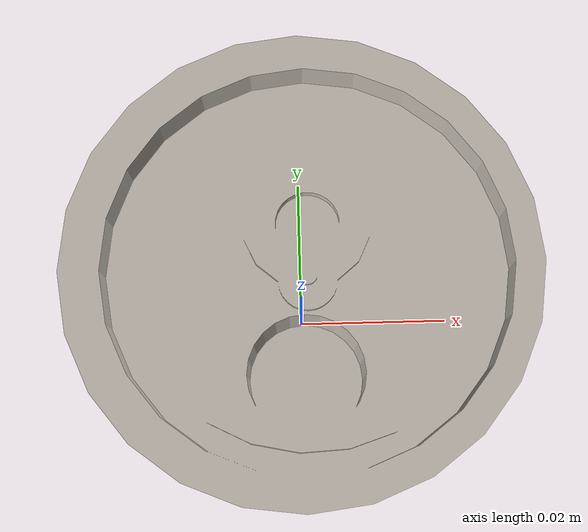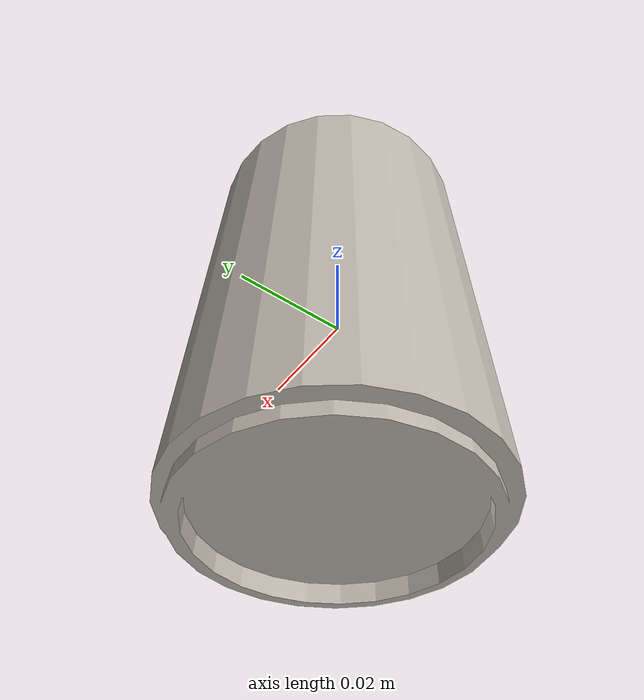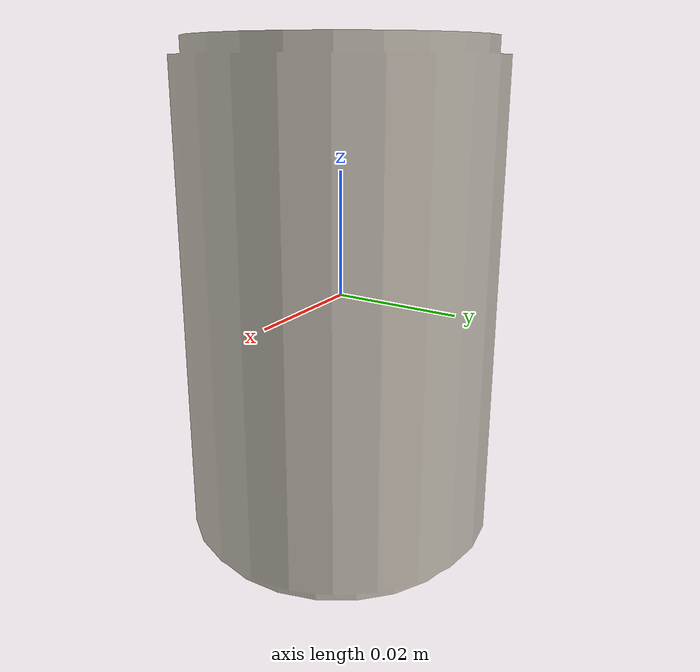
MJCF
<mujoco model="strawberry_juice">
  <asset>
    <mesh file="meshes/can.msh" name="can_mesh"/>
    <texture type="2d" file="../textures/strawberry_juice.png" rgb1="1 1 1" name="tex-strawberryjuice"/>
    <material name="strawberry_juice" reflectance="0.5" texrepeat="1 1" texture="tex-strawberryjuice" texuniform="false"/>
  </asset>
  <worldbody>
    <body>
      <body name="object">
        <geom pos="0 0 0" mesh="can_mesh" type="mesh" solimp="0.998 0.998 0.001" solref="0.001 1" density="100" friction="0.95 0.3 0.1" material="strawberry_juice" group="0" condim="4"/>
      </body>
      <site rgba="0 0 0 0" size="0.005" pos="0 0 -0.06" name="bottom_site"/>
      <site rgba="0 0 0 0" size="0.005" pos="0 0 0.04" name="top_site"/>
      <site rgba="0 0 0 0" size="0.005" pos="0.025 0.025 0" name="horizontal_radius_site"/>
    </body>
  </worldbody>
</mujoco>
